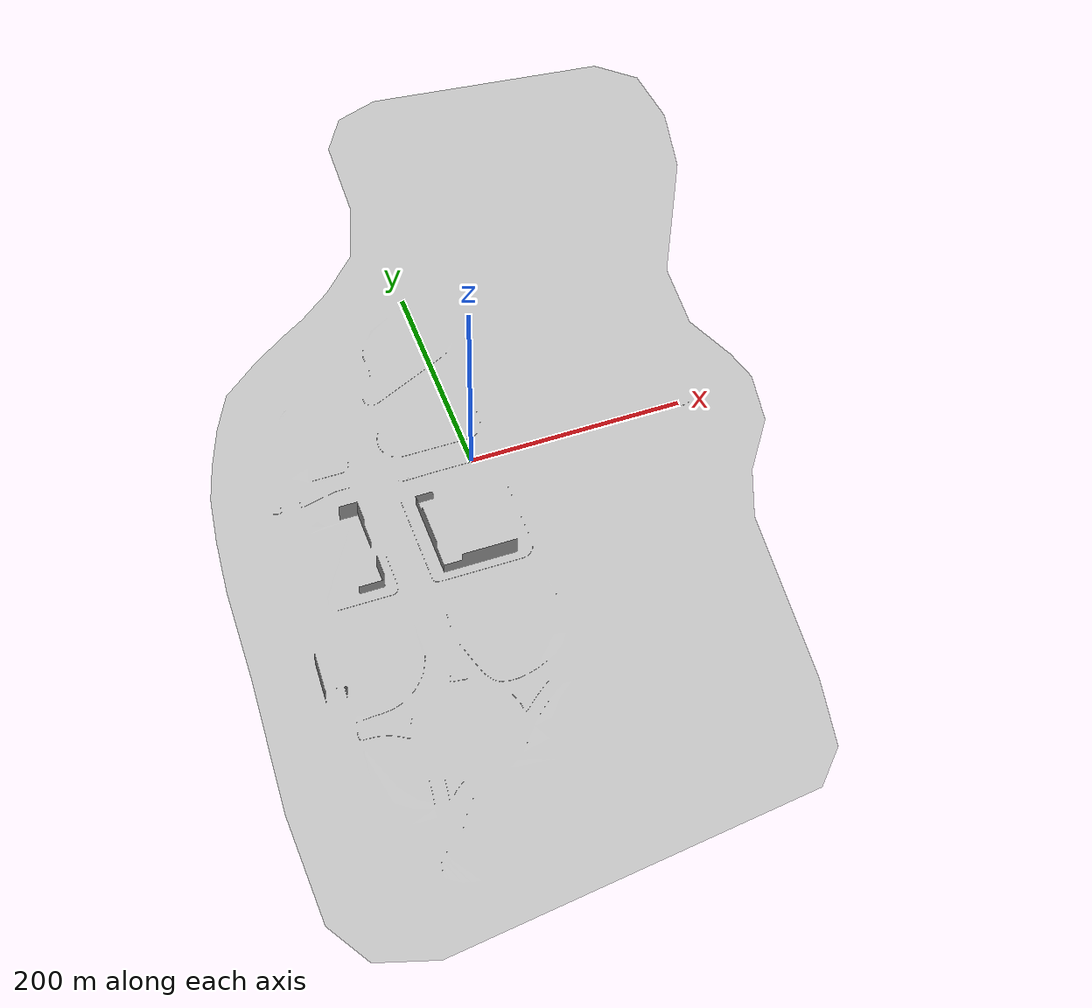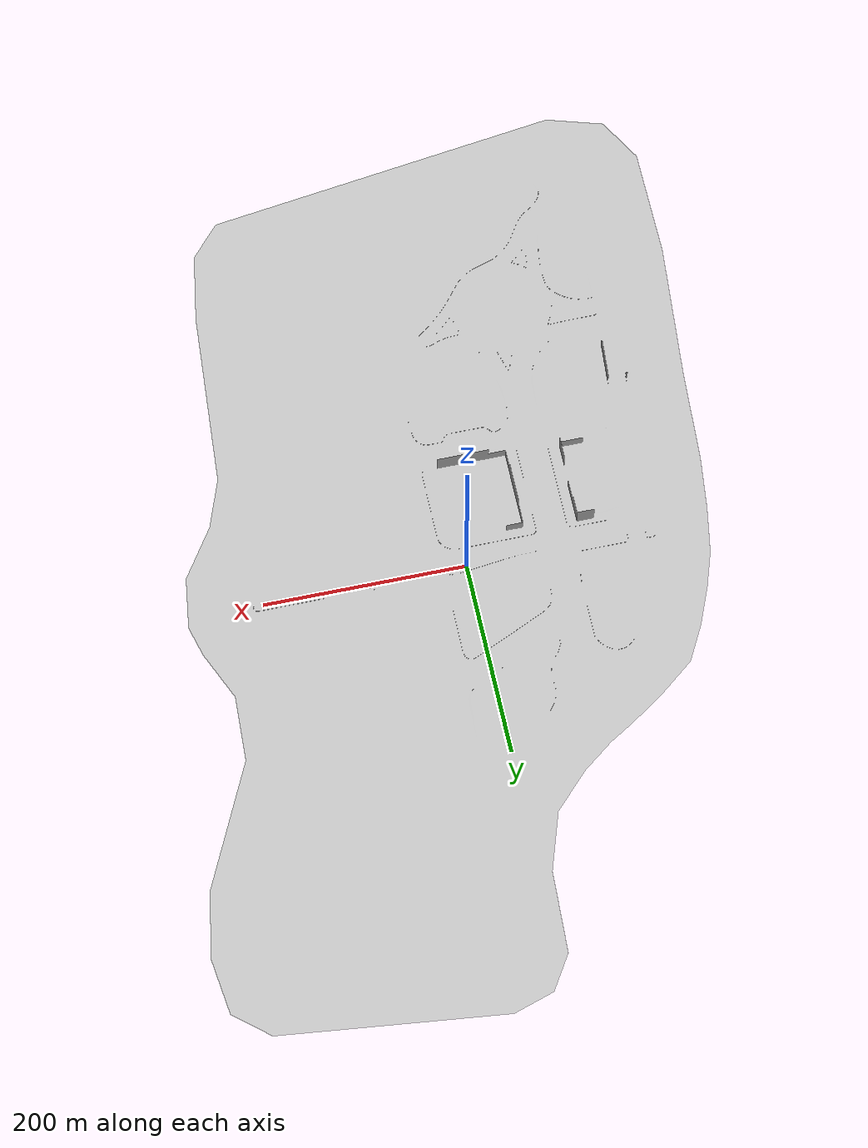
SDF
<sdf version="1.6">
 <world name="default">
  <model name="cafe">
   <static>1</static>
   <link name="link">
    <collision name="collision">
     <geometry><mesh><scale>0.254 0.254 0.254</scale><uri>model://mcity/meshes/mcity.obj</uri></mesh></geometry>
    </collision>
    <visual name="visual">
     <geometry><mesh><scale>0.254 0.254 0.254</scale><uri>model://mcity/meshes/mcity.obj</uri></mesh></geometry>
    </visual>
   </link>
  </model>
 </world>
</sdf>
